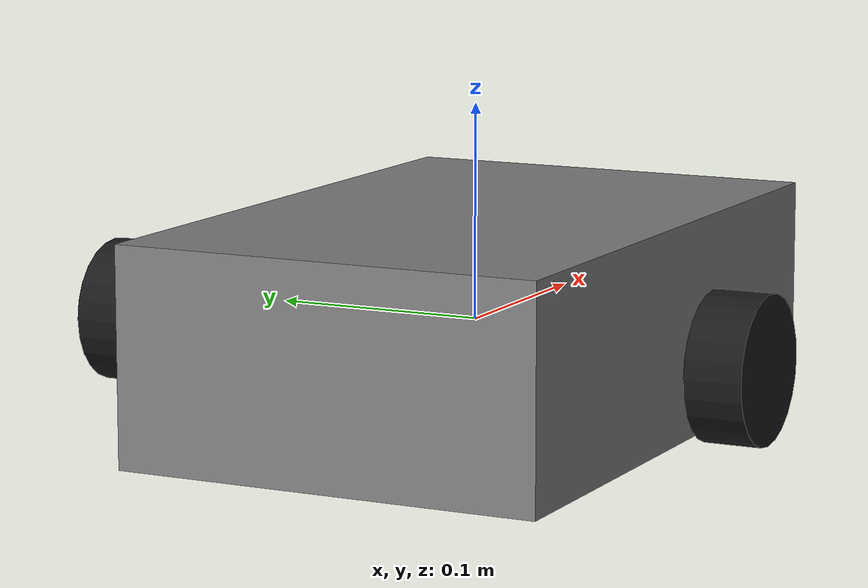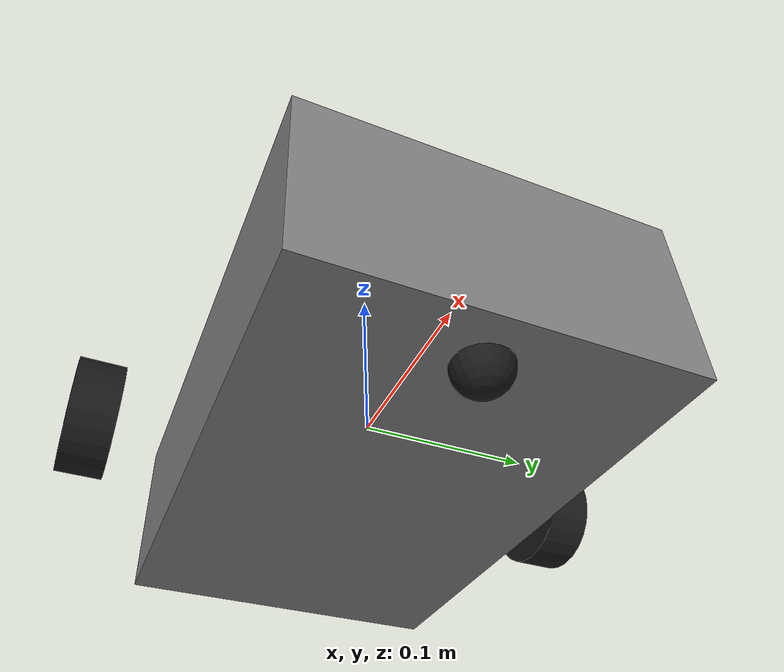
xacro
<?xml version="1.0"?>
<robot name="gemstone_ugv" xmlns:xacro="http://www.ros.org/wiki/xacro">

  <xacro:property name="chassis_length" value="0.30"/>
  <xacro:property name="chassis_width" value="0.20"/>
  <xacro:property name="chassis_height" value="0.10"/>
  <xacro:property name="chassis_mass" value="2.0"/>

  <xacro:property name="wheel_radius" value="0.033"/>
  <xacro:property name="wheel_width" value="0.026"/>
  <xacro:property name="wheel_mass" value="0.05"/>
  <!-- gemstone_motor_driver/params/motor_driver_params.yaml ile ayni tutun -->
  <xacro:property name="wheel_separation" value="0.30"/>
  <xacro:property name="wheel_x_offset" value="-0.05"/>

  <xacro:property name="caster_radius" value="0.015"/>
  <xacro:property name="caster_x_offset" value="0.12"/>

  <material name="gemstone_gray">
    <color rgba="0.5 0.5 0.5 1.0"/>
  </material>
  <material name="gemstone_black">
    <color rgba="0.1 0.1 0.1 1.0"/>
  </material>

  <link name="base_link">
    <visual>
      <geometry>
        <box size="${chassis_length} ${chassis_width} ${chassis_height}"/>
      </geometry>
      <material name="gemstone_gray"/>
    </visual>
    <collision>
      <geometry>
        <box size="${chassis_length} ${chassis_width} ${chassis_height}"/>
      </geometry>
    </collision>
    <inertial>
      <mass value="${chassis_mass}"/>
      <inertia ixx="0.01" ixy="0.0" ixz="0.0" iyy="0.02" iyz="0.0" izz="0.02"/>
    </inertial>
  </link>

  <xacro:macro name="drive_wheel" params="prefix y_reflect">
    <link name="${prefix}_wheel_link">
      <visual>
        <origin xyz="0 0 0" rpy="${pi/2} 0 0"/>
        <geometry>
          <cylinder radius="${wheel_radius}" length="${wheel_width}"/>
        </geometry>
        <material name="gemstone_black"/>
      </visual>
      <collision>
        <origin xyz="0 0 0" rpy="${pi/2} 0 0"/>
        <geometry>
          <cylinder radius="${wheel_radius}" length="${wheel_width}"/>
        </geometry>
      </collision>
      <inertial>
        <mass value="${wheel_mass}"/>
        <inertia ixx="0.0001" ixy="0.0" ixz="0.0" iyy="0.0001" iyz="0.0" izz="0.0001"/>
      </inertial>
    </link>

    <joint name="${prefix}_wheel_joint" type="continuous">
      <parent link="base_link"/>
      <child link="${prefix}_wheel_link"/>
      <origin xyz="${wheel_x_offset} ${y_reflect * wheel_separation / 2.0} 0" rpy="0 0 0"/>
      <axis xyz="0 1 0"/>
    </joint>
  </xacro:macro>

  <xacro:drive_wheel prefix="left" y_reflect="1"/>
  <xacro:drive_wheel prefix="right" y_reflect="-1"/>

  <link name="caster_wheel_link">
    <visual>
      <geometry>
        <sphere radius="${caster_radius}"/>
      </geometry>
      <material name="gemstone_black"/>
    </visual>
    <collision>
      <geometry>
        <sphere radius="${caster_radius}"/>
      </geometry>
    </collision>
    <inertial>
      <mass value="0.02"/>
      <inertia ixx="0.00001" ixy="0.0" ixz="0.0" iyy="0.00001" iyz="0.0" izz="0.00001"/>
    </inertial>
  </link>

  <joint name="caster_wheel_joint" type="fixed">
    <parent link="base_link"/>
    <child link="caster_wheel_link"/>
    <origin xyz="${caster_x_offset} 0 ${-chassis_height/2}" rpy="0 0 0"/>
  </joint>

  <!-- Sensor cerceveleri: gercek montaj konumlarina gore origin degerlerini guncelleyin -->

  <link name="imu_link"/>
  <joint name="imu_joint" type="fixed">
    <parent link="base_link"/>
    <child link="imu_link"/>
    <origin xyz="0 0 0" rpy="0 0 0"/>
  </joint>

  <link name="lidar_link"/>
  <joint name="lidar_joint" type="fixed">
    <parent link="base_link"/>
    <child link="lidar_link"/>
    <origin xyz="0 0 ${chassis_height/2 + 0.05}" rpy="0 0 2.068"/>
  </joint>

  <link name="camera_link"/>
  <joint name="camera_joint" type="fixed">
    <parent link="base_link"/>
    <child link="camera_link"/>
    <origin xyz="${chassis_length/2} 0 ${chassis_height/2}" rpy="0 0 0"/>
  </joint>

</robot>
